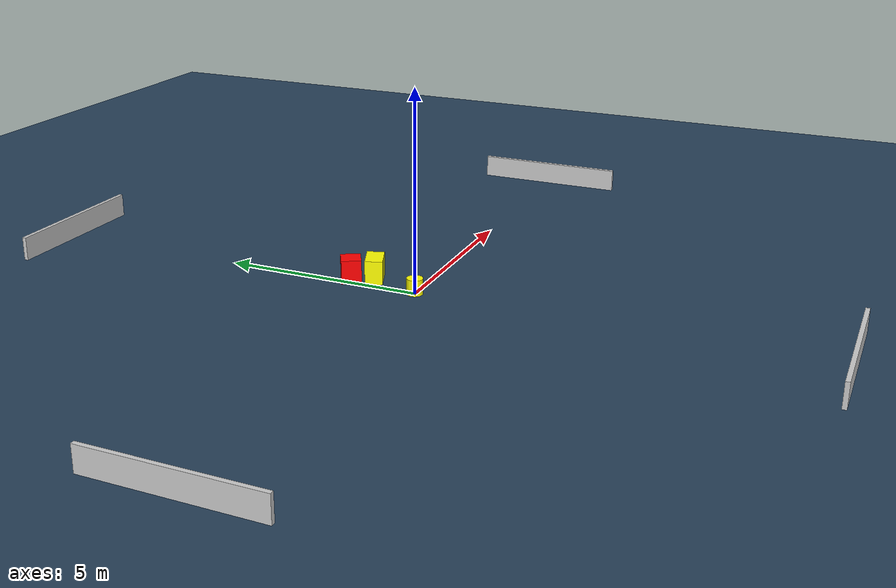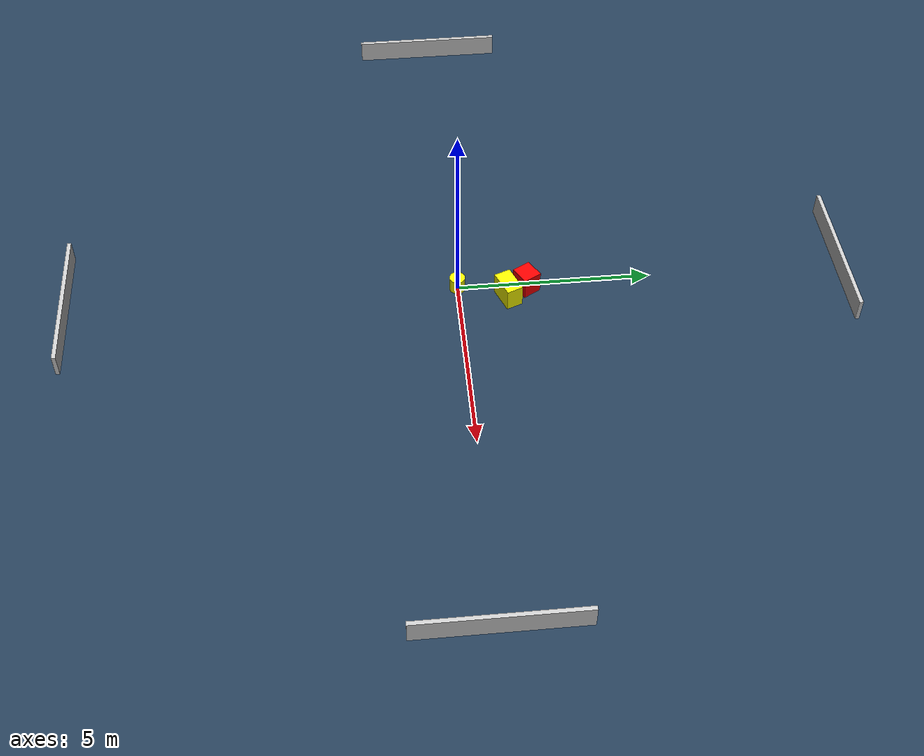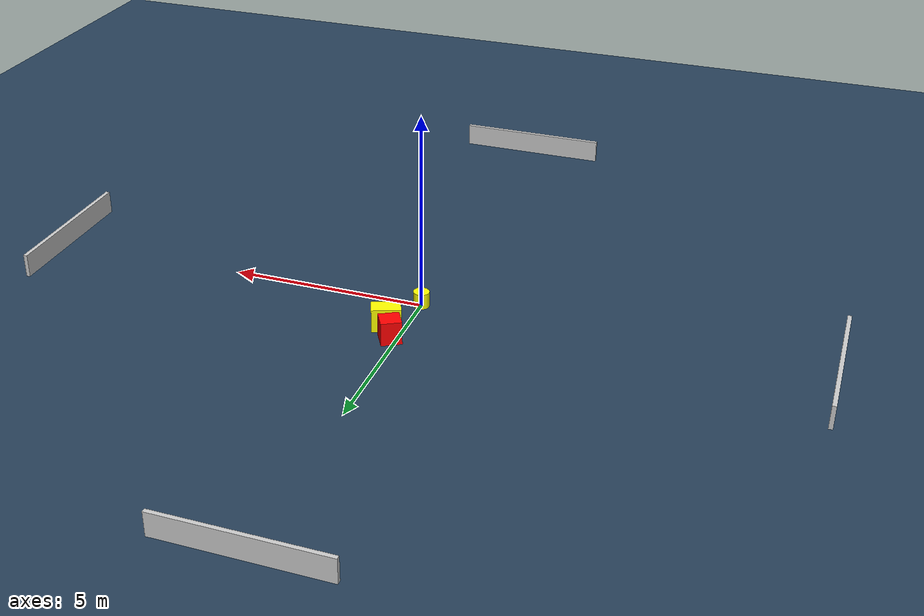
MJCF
<?xml version="1.0" ?>
<mujoco model="generated_environment">
  <option timestep="0.01" integrator="RK4" cone="elliptic"/>
  <default>
    <geom density="1"/>
  </default>
  <asset>
    <texture builtin="gradient" height="3072" name="skybox" rgb1="0.3 0.5 0.7" rgb2="0 0 0" type="skybox" width="512"/>
    <texture builtin="checker" height="300" name="groundplane" rgb1="0.2 0.3 0.4" rgb2="0.1 0.2 0.3" type="2d" width="300"/>
    <material name="groundplane" reflectance="0.2" texrepeat="5 5" texture="groundplane"/>
  </asset>
  <worldbody>
    <light dir="0 0 -1" directional="true" pos="0 0 1.5"/>
    <geom condim="3" friction="0.5 0.005 0.001" material="groundplane" name="floor" pos="0 0 0" size="0 0 0.05" type="plane"/>
    <body name="walls">
      <geom name="wall_1" condim="4" pos="-10.0 0.0 0.3" rgba="0.800000011920929 0.800000011920929 0.800000011920929 1.0" size="0.05 2.0 0.3" type="box"/>
      <geom name="wall_2" condim="4" pos="10.0 0.0 0.3" rgba="0.800000011920929 0.800000011920929 0.800000011920929 1.0" size="0.05 2.0 0.3" type="box"/>
      <geom name="wall_3" condim="4" pos="0.0 -10.0 0.3" rgba="0.800000011920929 0.800000011920929 0.800000011920929 1.0" size="2.0 0.05 0.3" type="box"/>
      <geom name="wall_4" condim="4" pos="0.0 10.0 0.3" rgba="0.800000011920929 0.800000011920929 0.800000011920929 1.0" size="2.0 0.05 0.3" type="box"/>
    </body>
    <body name="robot">
      <joint name="joint_x" type="slide" pos="0 0 0" axis="1 0 0"/>
      <joint name="joint_y" type="slide" pos="0 0 0" axis="0 1 0"/>
      <geom name="robot" type="cylinder" pos="0.0 0.0 0.2" size="0.2 0.2 0.0" mass="5.0" friction="1.0 0.005 0.0001" condim="4" rgba="1.0 1.0 0.0 1.0"/>
    </body>
    <body name="obstacle_1_movable">
      <geom name="obstacle_1_movable" condim="4" pos="0.4392548058561025 1.2707540765276875 0.3" euler="0 0 201.4835923802637" friction="0.0 0.005 0.001" rgba="1.0 1.0 0.0 1.0" size="0.3594826318871811 0.21790545954432672 0.3" type="box" mass="0.1"/>
      <joint type="free"/>
    </body>
    <body name="obstacle_2_static">
      <geom name="obstacle_2_static" condim="4" pos="0.1505805862488098 1.7761966175942496 0.3" euler="0 0 299.6827309052616" friction="0.0 0.005 0.001" rgba="1.0 0.0 0.0 1.0" size="0.2466883134968889 0.25660328336129284 0.3" type="box"/>
    </body>
  </worldbody>
  <actuator>
    <motor name="actuator_x" joint="joint_x" gear="1" ctrlrange="-1 1"/>
    <motor name="actuator_y" joint="joint_y" gear="1" ctrlrange="-1 1"/>
  </actuator>
</mujoco>
